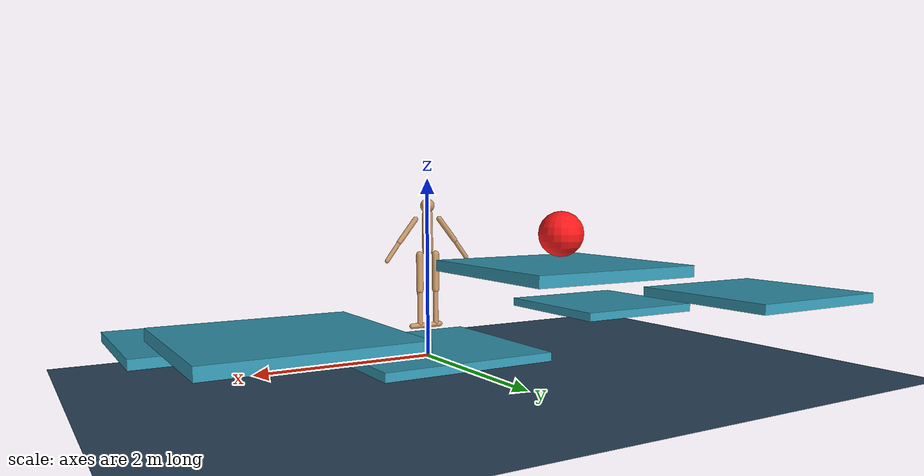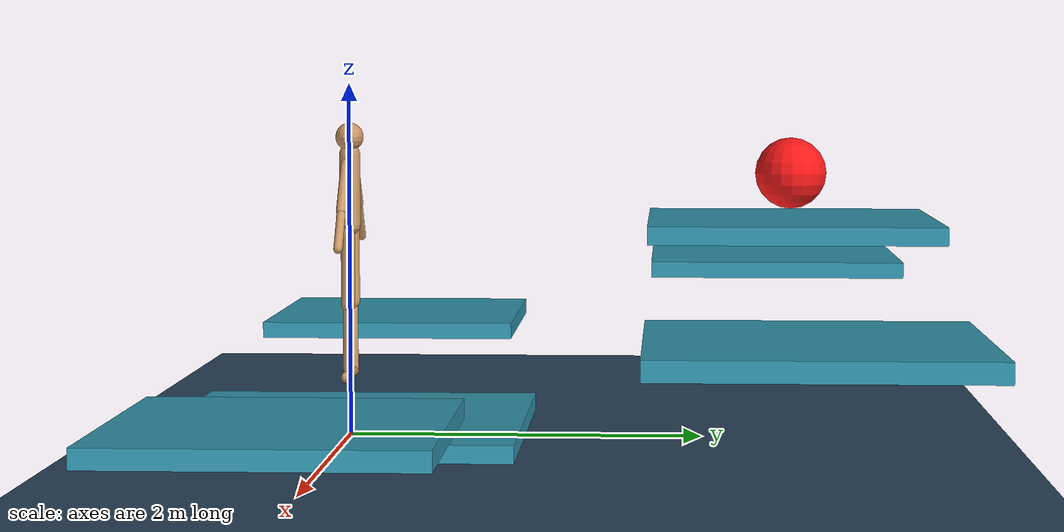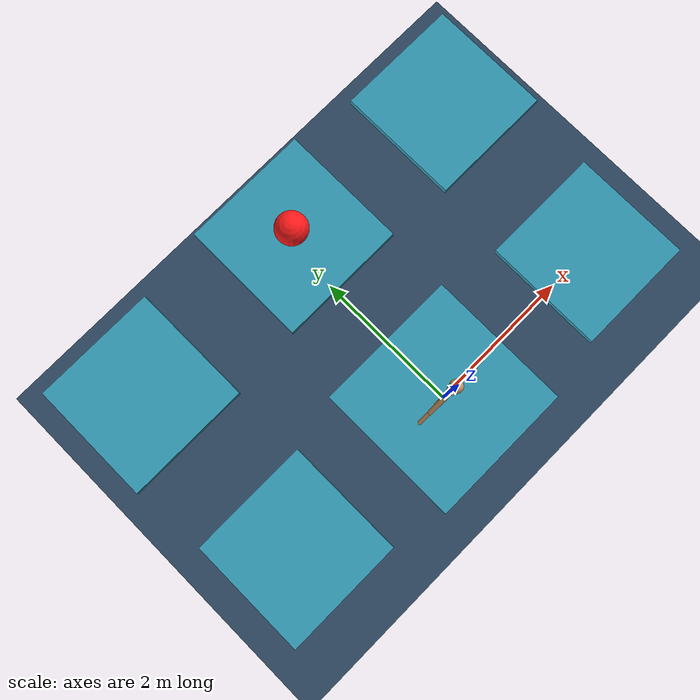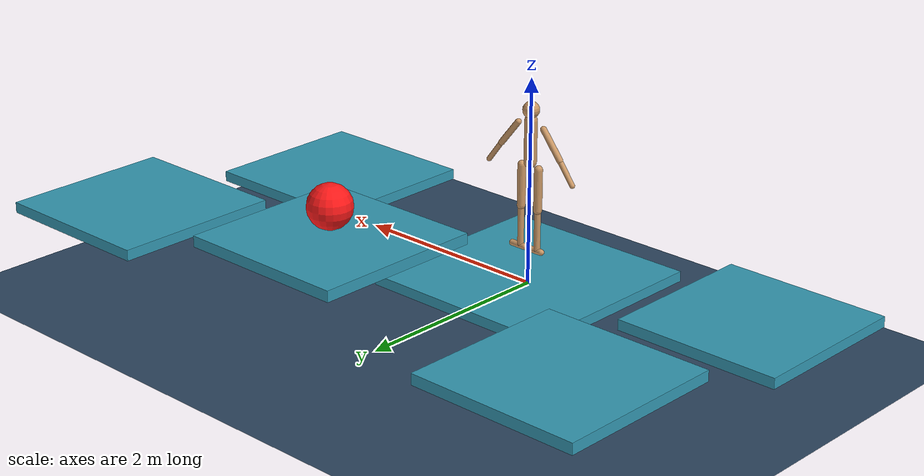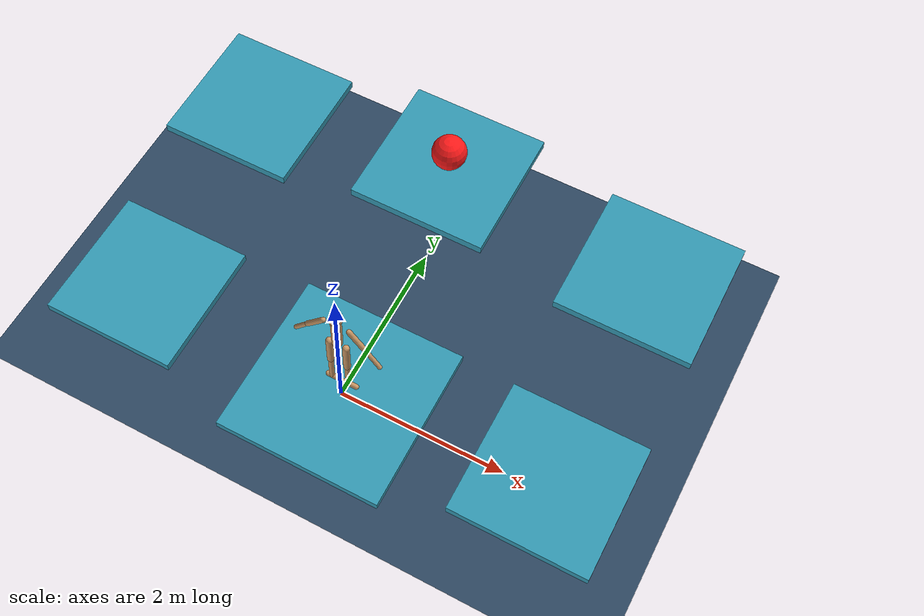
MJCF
<mujoco model="humanoid_floating_platforms">
  <compiler angle="radian"/>
  <option timestep="0.005" gravity="0 0 -9.81" iterations="50" tolerance="1e-8"/>

  <default>
    <joint damping="0.5" armature="0.1"/>
    <geom friction="1.0 0.5 0.5" condim="3" contype="2" conaffinity="1"/>
    <motor ctrlrange="-1 1" ctrllimited="true"/>
  </default>

  <asset>
    <texture type="skybox" builtin="gradient" rgb1="0.3 0.5 0.7" rgb2="0.1 0.2 0.4" width="512" height="512"/>
    <texture name="grid_tex" type="2d" builtin="checker" rgb1="0.2 0.3 0.4" rgb2="0.15 0.25 0.35" width="512" height="512" mark="none" markrgb="0.4 0.6 0.8"/>
    <material name="grid_mat" texture="grid_tex" texrepeat="12 12" reflectance="0.2"/>
    <material name="platform_mat" rgba="0.2 0.6 0.7 1" reflectance="0.3"/>
    <material name="target_mat" rgba="1 0.1 0.1 1" reflectance="0.5"/>
    <material name="body_mat" rgba="0.8 0.6 0.4 1"/>
  </asset>

  <worldbody>
    <!-- Ground plane (safety floor far below) -->
    <geom name="ground" type="plane" size="12 12 0.1" material="grid_mat" contype="1" conaffinity="1"/>
    <light directional="true" pos="0 0 5" dir="0 0 -1" diffuse="0.8 0.8 0.8" specular="0.3 0.3 0.3"/>

    <!-- Floating platforms at various heights -->
    <body name="platform_1" pos="0 0 0.05">
      <geom name="platform_1_geom" type="box" size="1.0 1.0 0.05" material="platform_mat" mass="1000" contype="1" conaffinity="3" condim="4"/>
    </body>
    <body name="platform_2" pos="2.5 0 0.4">
      <geom name="platform_2_geom" type="box" size="0.8 0.8 0.05" material="platform_mat" mass="1000" contype="1" conaffinity="3" condim="4"/>
    </body>
    <body name="platform_3" pos="2.5 2.5 0.8">
      <geom name="platform_3_geom" type="box" size="0.8 0.8 0.05" material="platform_mat" mass="1000" contype="1" conaffinity="3" condim="4"/>
    </body>
    <body name="platform_4" pos="0 2.5 1.2">
      <geom name="platform_4_geom" type="box" size="0.8 0.8 0.05" material="platform_mat" mass="1000" contype="1" conaffinity="3" condim="4"/>
    </body>
    <body name="platform_5" pos="-2.5 2.5 0.8">
      <geom name="platform_5_geom" type="box" size="0.8 0.8 0.05" material="platform_mat" mass="1000" contype="1" conaffinity="3" condim="4"/>
    </body>
    <body name="platform_6" pos="-2.5 0 0.4">
      <geom name="platform_6_geom" type="box" size="0.8 0.8 0.05" material="platform_mat" mass="1000" contype="1" conaffinity="3" condim="4"/>
    </body>

    <!-- Target marker on the highest platform -->
    <body name="target_marker" pos="0 2.5 1.5">
      <geom name="target_geom" type="sphere" size="0.2" material="target_mat" contype="0" conaffinity="0"/>
    </body>

    <!-- ─── Simplified Stick-figure Humanoid (hinge-only, motor actuator) ─── -->
    <body name="torso" pos="0 0 1.2">
      <joint name="root" type="free" damping="0.5"/>
      <geom name="torso_geom" type="capsule" size="0.06" fromto="0 0 0 0 0 0.4" material="body_mat" mass="5" contype="2" conaffinity="1"/>
      <site name="torso_top" pos="0 0 0.4" size="0.01"/>

      <!-- Head: 3 serial hinge joints (replaces ball joint) -->
      <body name="head" pos="0 0 0.5">
        <joint name="head_x" type="hinge" axis="1 0 0" damping="1" armature="0.2" range="-0.5 0.5"/>
        <inertial pos="0 0 0" mass="0.001" diaginertia="1e-6 1e-6 1e-6"/>
        <body name="head_y_body" pos="0 0 0">
          <joint name="head_y" type="hinge" axis="0 1 0" damping="1" armature="0.2" range="-0.5 0.5"/>
        <inertial pos="0 0 0" mass="0.001" diaginertia="1e-6 1e-6 1e-6"/>
          <body name="head_z_body" pos="0 0 0">
            <joint name="head_z" type="hinge" axis="0 0 1" damping="1" armature="0.2" range="-0.5 0.5"/>
            <geom name="head_geom" type="sphere" size="0.08" material="body_mat" mass="1" contype="2" conaffinity="1"/>
          </body>
        </body>
      </body>

      <!-- Left leg: hip 3 serial hinge joints (replaces ball joint) -->
      <body name="upper_leg_l" pos="0.10 0 -0.05">
        <joint name="hip_l_x" type="hinge" axis="1 0 0" damping="1" armature="0.2" range="-1.2 1.2"/>
        <inertial pos="0 0 0" mass="0.001" diaginertia="1e-6 1e-6 1e-6"/>
        <body name="hip_l_y_body" pos="0 0 0">
          <joint name="hip_l_y" type="hinge" axis="0 1 0" damping="1" armature="0.2" range="-1.5 1.5"/>
        <inertial pos="0 0 0" mass="0.001" diaginertia="1e-6 1e-6 1e-6"/>
          <body name="hip_l_z_body" pos="0 0 0">
            <joint name="hip_l_z" type="hinge" axis="0 0 1" damping="1" armature="0.2" range="-1.0 1.0"/>
            <geom name="upper_leg_l_geom" type="capsule" size="0.04" fromto="0 0 0 0 0 -0.4" material="body_mat" mass="2" contype="2" conaffinity="1"/>

            <!-- Lower leg -->
            <body name="lower_leg_l" pos="0 0 -0.4">
              <joint name="knee_l" type="hinge" axis="0 1 0" damping="1" armature="0.2" range="-2.0 0.01"/>
              <geom name="lower_leg_l_geom" type="capsule" size="0.03" fromto="0 0 0 0 0 -0.4" material="body_mat" mass="1" contype="2" conaffinity="1"/>

              <!-- Foot -->
              <body name="foot_l" pos="0 0 -0.4">
                <joint name="ankle_l" type="hinge" axis="0 1 0" damping="0.5" armature="0.1" range="-0.5 0.5"/>
                <geom name="foot_l_geom" type="capsule" size="0.03 0.1" fromto="-0.05 0 0 0.1 0 0" material="body_mat" mass="0.5" contype="2" conaffinity="1"/>
                <site name="foot_l_site" pos="0 0 0" size="0.01"/>
              </body>
            </body>
          </body>
        </body>
      </body>

      <!-- Right leg: hip 3 serial hinge joints (replaces ball joint) -->
      <body name="upper_leg_r" pos="-0.10 0 -0.05">
        <joint name="hip_r_x" type="hinge" axis="1 0 0" damping="1" armature="0.2" range="-1.2 1.2"/>
        <inertial pos="0 0 0" mass="0.001" diaginertia="1e-6 1e-6 1e-6"/>
        <body name="hip_r_y_body" pos="0 0 0">
          <joint name="hip_r_y" type="hinge" axis="0 1 0" damping="1" armature="0.2" range="-1.5 1.5"/>
        <inertial pos="0 0 0" mass="0.001" diaginertia="1e-6 1e-6 1e-6"/>
          <body name="hip_r_z_body" pos="0 0 0">
            <joint name="hip_r_z" type="hinge" axis="0 0 1" damping="1" armature="0.2" range="-1.0 1.0"/>
            <geom name="upper_leg_r_geom" type="capsule" size="0.04" fromto="0 0 0 0 0 -0.4" material="body_mat" mass="2" contype="2" conaffinity="1"/>

            <!-- Lower leg -->
            <body name="lower_leg_r" pos="0 0 -0.4">
              <joint name="knee_r" type="hinge" axis="0 1 0" damping="1" armature="0.2" range="-2.0 0.01"/>
              <geom name="lower_leg_r_geom" type="capsule" size="0.03" fromto="0 0 0 0 0 -0.4" material="body_mat" mass="1" contype="2" conaffinity="1"/>

              <!-- Foot -->
              <body name="foot_r" pos="0 0 -0.4">
                <joint name="ankle_r" type="hinge" axis="0 1 0" damping="0.5" armature="0.1" range="-0.5 0.5"/>
                <geom name="foot_r_geom" type="capsule" size="0.03 0.1" fromto="-0.05 0 0 0.1 0 0" material="body_mat" mass="0.5" contype="2" conaffinity="1"/>
                <site name="foot_r_site" pos="0 0 0" size="0.01"/>
              </body>
            </body>
          </body>
        </body>
      </body>

      <!-- Left arm: shoulder 3 serial hinge joints (replaces ball joint) -->
      <body name="upper_arm_l" pos="0.15 0 0.35">
        <joint name="shoulder_l_x" type="hinge" axis="1 0 0" damping="1" armature="0.1" range="-1.5 1.5"/>
        <inertial pos="0 0 0" mass="0.001" diaginertia="1e-6 1e-6 1e-6"/>
        <body name="shoulder_l_y_body" pos="0 0 0">
          <joint name="shoulder_l_y" type="hinge" axis="0 1 0" damping="1" armature="0.1" range="-1.5 1.5"/>
        <inertial pos="0 0 0" mass="0.001" diaginertia="1e-6 1e-6 1e-6"/>
          <body name="shoulder_l_z_body" pos="0 0 0">
            <joint name="shoulder_l_z" type="hinge" axis="0 0 1" damping="1" armature="0.1" range="-1.5 1.5"/>
            <geom name="upper_arm_l_geom" type="capsule" size="0.03" fromto="0 0 0 0.2 0 -0.25" material="body_mat" mass="1" contype="2" conaffinity="1"/>

            <!-- Lower arm -->
            <body name="lower_arm_l" pos="0.2 0 -0.25">
              <joint name="elbow_l" type="hinge" axis="0 1 0" damping="0.5" armature="0.1" range="-2.5 0"/>
              <geom name="lower_arm_l_geom" type="capsule" size="0.025" fromto="0 0 0 0.15 0 -0.2" material="body_mat" mass="0.5" contype="2" conaffinity="1"/>
            </body>
          </body>
        </body>
      </body>

      <!-- Right arm: shoulder 3 serial hinge joints (replaces ball joint) -->
      <body name="upper_arm_r" pos="-0.15 0 0.35">
        <joint name="shoulder_r_x" type="hinge" axis="1 0 0" damping="1" armature="0.1" range="-1.5 1.5"/>
        <inertial pos="0 0 0" mass="0.001" diaginertia="1e-6 1e-6 1e-6"/>
        <body name="shoulder_r_y_body" pos="0 0 0">
          <joint name="shoulder_r_y" type="hinge" axis="0 1 0" damping="1" armature="0.1" range="-1.5 1.5"/>
        <inertial pos="0 0 0" mass="0.001" diaginertia="1e-6 1e-6 1e-6"/>
          <body name="shoulder_r_z_body" pos="0 0 0">
            <joint name="shoulder_r_z" type="hinge" axis="0 0 1" damping="1" armature="0.1" range="-1.5 1.5"/>
            <geom name="upper_arm_r_geom" type="capsule" size="0.03" fromto="0 0 0 -0.2 0 -0.25" material="body_mat" mass="1" contype="2" conaffinity="1"/>

            <!-- Lower arm -->
            <body name="lower_arm_r" pos="-0.2 0 -0.25">
              <joint name="elbow_r" type="hinge" axis="0 1 0" damping="0.5" armature="0.1" range="-2.5 0"/>
              <geom name="lower_arm_r_geom" type="capsule" size="0.025" fromto="0 0 0 -0.15 0 -0.2" material="body_mat" mass="0.5" contype="2" conaffinity="1"/>
            </body>
          </body>
        </body>
      </body>
    </body>
  </worldbody>

  <!-- Actuators: all motor type with gear for torque amplification -->
  <actuator>
    <motor name="act_head_x" joint="head_x" gear="20" ctrlrange="-1 1"/>
    <motor name="act_head_y" joint="head_y" gear="20" ctrlrange="-1 1"/>
    <motor name="act_head_z" joint="head_z" gear="20" ctrlrange="-1 1"/>
    <motor name="act_hip_l_x" joint="hip_l_x" gear="100" ctrlrange="-1 1"/>
    <motor name="act_hip_l_y" joint="hip_l_y" gear="100" ctrlrange="-1 1"/>
    <motor name="act_hip_l_z" joint="hip_l_z" gear="80" ctrlrange="-1 1"/>
    <motor name="act_hip_r_x" joint="hip_r_x" gear="100" ctrlrange="-1 1"/>
    <motor name="act_hip_r_y" joint="hip_r_y" gear="100" ctrlrange="-1 1"/>
    <motor name="act_hip_r_z" joint="hip_r_z" gear="80" ctrlrange="-1 1"/>
    <motor name="act_knee_l" joint="knee_l" gear="100" ctrlrange="-1 1"/>
    <motor name="act_knee_r" joint="knee_r" gear="100" ctrlrange="-1 1"/>
    <motor name="act_ankle_l" joint="ankle_l" gear="60" ctrlrange="-1 1"/>
    <motor name="act_ankle_r" joint="ankle_r" gear="60" ctrlrange="-1 1"/>
    <motor name="act_shoulder_l_x" joint="shoulder_l_x" gear="50" ctrlrange="-1 1"/>
    <motor name="act_shoulder_l_y" joint="shoulder_l_y" gear="50" ctrlrange="-1 1"/>
    <motor name="act_shoulder_l_z" joint="shoulder_l_z" gear="50" ctrlrange="-1 1"/>
    <motor name="act_shoulder_r_x" joint="shoulder_r_x" gear="50" ctrlrange="-1 1"/>
    <motor name="act_shoulder_r_y" joint="shoulder_r_y" gear="50" ctrlrange="-1 1"/>
    <motor name="act_shoulder_r_z" joint="shoulder_r_z" gear="50" ctrlrange="-1 1"/>
    <motor name="act_elbow_l" joint="elbow_l" gear="40" ctrlrange="-1 1"/>
    <motor name="act_elbow_r" joint="elbow_r" gear="40" ctrlrange="-1 1"/>
  </actuator>

  <contact>
    <exclude body1="torso" body2="upper_leg_l"/>
    <exclude body1="torso" body2="upper_leg_r"/>
    <exclude body1="torso" body2="upper_arm_l"/>
    <exclude body1="torso" body2="upper_arm_r"/>
    <exclude body1="upper_leg_l" body2="lower_leg_l"/>
    <exclude body1="upper_leg_r" body2="lower_leg_r"/>
    <exclude body1="lower_leg_l" body2="foot_l"/>
    <exclude body1="lower_leg_r" body2="foot_r"/>
    <exclude body1="upper_arm_l" body2="lower_arm_l"/>
    <exclude body1="upper_arm_r" body2="lower_arm_r"/>
    <exclude body1="torso" body2="head"/>
  </contact>
</mujoco>
